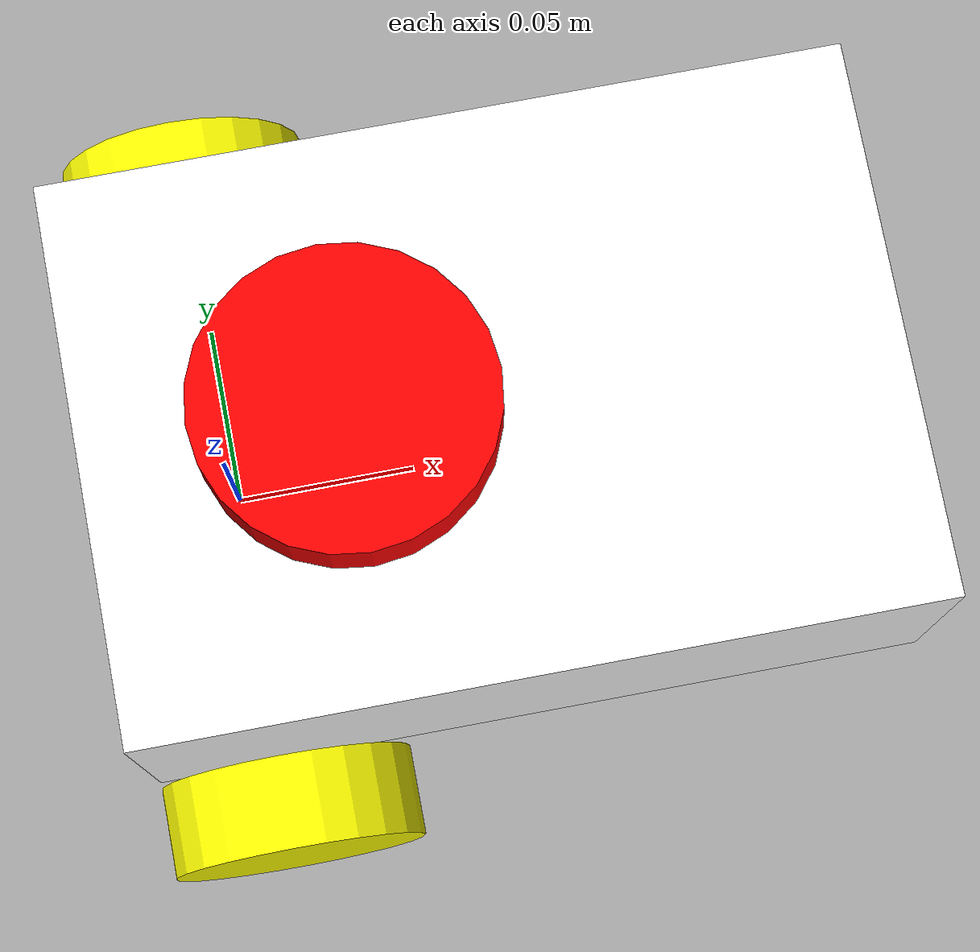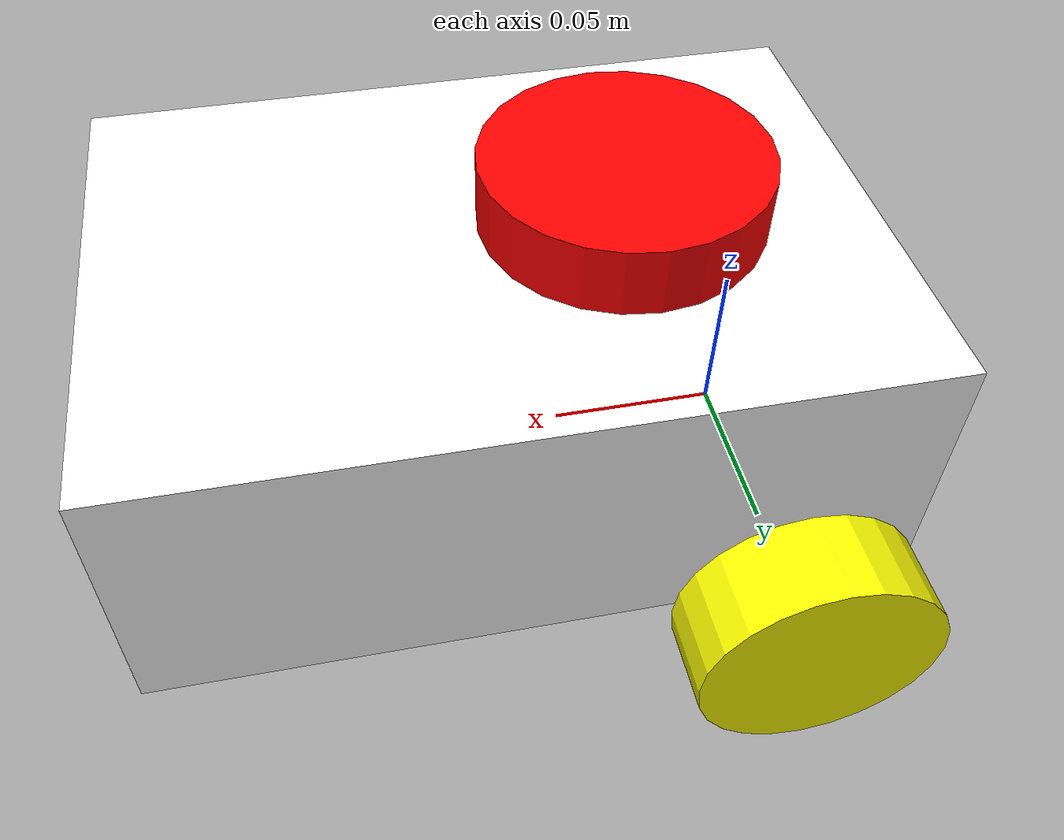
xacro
<?xml version="1.0"?>
<robot xmlns:xacro="http://www.ros.org/wiki/xacro"  name="robot">

    <xacro:arg name="use_ros2_control" default="false"/>
    <xacro:arg name="use_sim_mode" default="true"/>

    <xacro:include filename="robot_core.xacro" />

    <xacro:if value="$(arg use_ros2_control)">
        <xacro:include filename="ros2_control.xacro" />
    </xacro:if>

    <xacro:unless value="$(arg use_ros2_control)">
        <xacro:include filename="gazebo_control.xacro" />
    </xacro:unless>

    <xacro:include filename="lidar.xacro" />

</robot>

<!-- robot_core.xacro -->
<robot xmlns:xacro="http://www.ros.org/wiki/xacro" >

    <xacro:include filename="inertial_macros.xacro"/>

    <material name="white">
        <color rgba="1 1 1 1" />
    </material>

    <material name="orange">
        <color rgba="1 0.3 0.1 1"/>
    </material>

    <material name="blue">
        <color rgba="0.2 0.2 1 1"/>
    </material>

    <material name="black">
        <color rgba="0 0 0 1"/>
    </material>

    <material name="red">
        <color rgba="1 0 0 1"/>
    </material>

    <material name="yellow">
        <color rgba="1 1 0 1"/>
    </material>

    <!-- BASE LINK -->

    <link name="base_link">

    </link>

    <!-- BASE FOOTPRINT LINK -->
    <joint name="base_footprint_joint" type="fixed">
        <parent link="base_link"/>
        <child link="base_footprint"/>
       <origin xyz="-0.035 0 0" rpy="0 0 0" />
    </joint>

    <link name="base_footprint">
    </link>

    <!-- CHASSIS LINK -->

    <joint name="chassis_joint" type="fixed">
        <parent link="base_link"/>
        <child link="chassis"/>
       <origin xyz="-0.035 0 0" rpy="0 0 0" />
    </joint>

    <link name="chassis">
        <visual>
            <origin xyz="0.1075 0 0.04"/>
            <geometry>
                <box size="0.215 0.15 0.08"/>
            </geometry>
            <material name="white"/>
        </visual>
        <collision>
            <origin xyz="0.15 0 0.075"/>
            <geometry>
                <box size="0.215 0.15 0.08"/>
            </geometry>
        </collision>
        <xacro:inertial_box mass="0.5" x="0.3" y="0.3" z="0.15">
            <origin xyz="0.15 0 0.075" rpy="0 0 0"/>
        </xacro:inertial_box>
    </link>

    <gazebo reference="chassis">
        <material>Gazebo/White</material>
    </gazebo>

    <!-- LEFT WHEEL LINK -->

    <joint name="left_wheel_joint" type="continuous">
        <parent link="base_link"/>
        <child link="left_wheel"/>
        <origin xyz="0 0.09 0" rpy="-1.57075 0 0" />
        <axis xyz="0 0 1"/>
    </joint>

    <link name="left_wheel">
        <visual>
            <geometry>
                <cylinder radius="0.035" length="0.025"/>
            </geometry>
            <material name="yellow"/>
        </visual>
        <collision>
            <geometry>
                <sphere radius="0.035"/>
            </geometry>
        </collision>
        <xacro:inertial_cylinder mass="0.1" length="0.025" radius="0.035">
            <origin xyz="0 0 0" rpy="0 0 0"/>
        </xacro:inertial_cylinder>
    </link>

    <gazebo reference="left_wheel">
        <material>Gazebo/Yellow</material>
    </gazebo>

    <!-- RIGHT WHEEL LINK -->

    <joint name="right_wheel_joint" type="continuous">
        <parent link="base_link"/>
        <child link="right_wheel"/>
        <origin xyz="0 -0.09 0" rpy="1.57075 0 0"/>
        <axis xyz="0 0 -1"/>
    </joint>

    <link name="right_wheel">
        <visual>
            <geometry>
                <cylinder radius="0.035" length="0.025"/>
            </geometry>
            <material name="yellow"/>
        </visual>
        <collision>
            <geometry>
                <sphere radius="0.035"/>
            </geometry>
        </collision>
        <xacro:inertial_cylinder mass="0.1" length="0.025" radius="0.035">
            <origin xyz="0 0 0" rpy="0 0 0"/>
        </xacro:inertial_cylinder>
    </link>

    <gazebo reference="right_wheel">
        <material>Gazebo/Yellow</material>
    </gazebo>

    <!-- CASTER WHEEL LINK -->

    <joint name="caster_wheel_joint" type="fixed">
        <parent link="chassis"/>
        <child link="caster_wheel"/>
        <origin xyz="0.18 0 0"/>
    </joint>

    <link name="caster_wheel">
        <visual>
            <geometry>
                <sphere radius="0.035"/>
            </geometry>
            <material name="yellow"/>
        </visual>
        <collision>
            <geometry>
                <sphere radius="0.035"/>
            </geometry>
        </collision>
        <xacro:inertial_sphere mass="0.1" radius="0.035">
            <origin xyz="0 0 0" rpy="0 0 0"/>
        </xacro:inertial_sphere>
    </link>

    <gazebo reference="caster_wheel">
        <material>Gazebo/Yellow</material>
        <mu1 value="0.001"/>
        <mu2 value="0.001"/>
    </gazebo>

</robot>

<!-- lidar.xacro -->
<robot xmlns:xacro="http://www.ros.org/wiki/xacro" >

    <joint name="laser_joint" type="fixed">
        <parent link="base_link"/>
        <child link="laser_frame"/>
        <origin xyz="0.035 0 0.09" rpy="0 0 0"/>
    </joint>

    <link name="laser_frame">
        <visual>
            <geometry>
                <cylinder radius="0.04" length="0.02"/>
            </geometry>
            <material name="red"/>
        </visual>
        <collision>
            <geometry>
                <cylinder radius="0.001" length="0.04"/>
            </geometry>
        </collision>
        <xacro:inertial_cylinder mass="0.1" length="0.04" radius="0.05">
            <origin xyz="0 0 0" rpy="0 0 0"/>
        </xacro:inertial_cylinder>
    </link>

    <gazebo reference="laser_frame">
        <material>Gazebo/Red</material>

        <sensor name="laser" type="ray">
            <pose> 0 0 0 0 0 0 </pose>
            <visualize>true</visualize>
            <update_rate>100</update_rate>
            <ray>
                <scan>
                    <horizontal>
                        <samples>360</samples>
                        <min_angle>-3.14</min_angle>
                        <max_angle>3.14</max_angle>
                    </horizontal>
                </scan>
                <range>
                    <min>0.3</min>
                    <max>50</max>
                </range>
            </ray>
            <plugin name="laser_controller" filename="libgazebo_ros_ray_sensor.so">
                <ros>
                    <argument>~/out:=scan</argument>
                </ros>
                <output_type>sensor_msgs/LaserScan</output_type>
                <frame_name>laser_frame</frame_name>
            </plugin>
        </sensor>
    </gazebo>

</robot>
